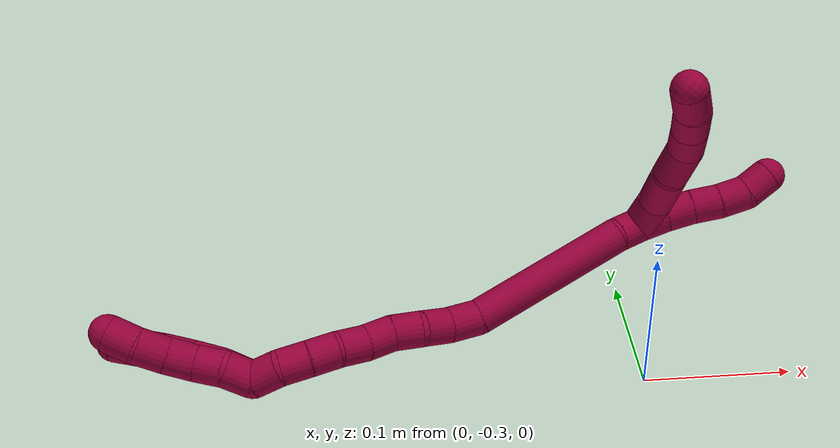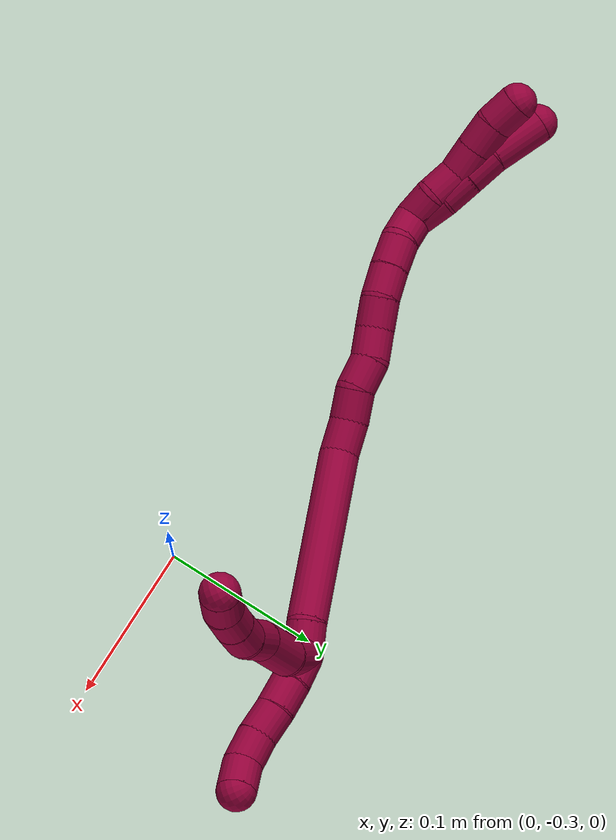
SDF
<sdf version="1.7">
 <world name="default">
  <model name="8">
   <static>0</static>
   <link name="8">
    <collision name="collision-cylinder-e_1_2_8">
     <pose>0.013202 -0.001698 0.000324 1.38202 1.44062 1.25569</pose>
     <geometry><cylinder><radius>0.0125</radius><length>0.026629</length></cylinder></geometry>
     <surface>
      <friction><ode><mu>1.16</mu><mu2>1.16</mu2><slip1>0</slip1><slip2>0</slip2></ode></friction>
      <contact><ode><kp>1e+06</kp><kd>1</kd><max_vel>0</max_vel><min_depth>0.001</min_depth></ode></contact>
     </surface>
    </collision>
    <visual name="visual-cylinder-e_1_2_8">
     <pose>0.013202 -0.001698 0.000324 1.38202 1.44062 1.25569</pose>
     <geometry><cylinder><radius>0.0125</radius><length>0.026629</length></cylinder></geometry>
     <material><ambient>0.584314 0 0.227451 1</ambient></material>
    </visual>
    <collision name="collision-cylinder-e_2_8_9">
     <pose>0.042569 -0.01054 0.001719 1.4221 1.15054 1.01874</pose>
     <geometry><cylinder><radius>0.0125</radius><length>0.035413</length></cylinder></geometry>
     <surface>
      <friction><ode><mu>1.16</mu><mu2>1.16</mu2><slip1>0</slip1><slip2>0</slip2></ode></friction>
      <contact><ode><kp>1e+06</kp><kd>1</kd><max_vel>0</max_vel><min_depth>0.001</min_depth></ode></contact>
     </surface>
    </collision>
    <visual name="visual-cylinder-e_2_8_9">
     <pose>0.042569 -0.01054 0.001719 1.4221 1.15054 1.01874</pose>
     <geometry><cylinder><radius>0.0125</radius><length>0.035413</length></cylinder></geometry>
     <material><ambient>0.584314 0 0.227451 1</ambient></material>
    </visual>
    <collision name="collision-cylinder-e_3_9_10">
     <pose>0.071574 -0.019841 0.003708 1.16831 1.39016 1.00771</pose>
     <geometry><cylinder><radius>0.0125</radius><length>0.026101</length></cylinder></geometry>
     <surface>
      <friction><ode><mu>1.16</mu><mu2>1.16</mu2><slip1>0</slip1><slip2>0</slip2></ode></friction>
      <contact><ode><kp>1e+06</kp><kd>1</kd><max_vel>0</max_vel><min_depth>0.001</min_depth></ode></contact>
     </surface>
    </collision>
    <visual name="visual-cylinder-e_3_9_10">
     <pose>0.071574 -0.019841 0.003708 1.16831 1.39016 1.00771</pose>
     <geometry><cylinder><radius>0.0125</radius><length>0.026101</length></cylinder></geometry>
     <material><ambient>0.584314 0 0.227451 1</ambient></material>
    </visual>
    <collision name="collision-cylinder-e_4_10_11">
     <pose>0.09367 -0.02674 0.006908 1.12231 1.05398 0.701264</pose>
     <geometry><cylinder><radius>0.0125</radius><length>0.021299</length></cylinder></geometry>
     <surface>
      <friction><ode><mu>1.16</mu><mu2>1.16</mu2><slip1>0</slip1><slip2>0</slip2></ode></friction>
      <contact><ode><kp>1e+06</kp><kd>1</kd><max_vel>0</max_vel><min_depth>0.001</min_depth></ode></contact>
     </surface>
    </collision>
    <visual name="visual-cylinder-e_4_10_11">
     <pose>0.09367 -0.02674 0.006908 1.12231 1.05398 0.701264</pose>
     <geometry><cylinder><radius>0.0125</radius><length>0.021299</length></cylinder></geometry>
     <material><ambient>0.584314 0 0.227451 1</ambient></material>
    </visual>
    <collision name="collision-cylinder-e_5_11_12">
     <pose>0.111339 -0.036394 0.011558 1.1215 0.995581 0.657761</pose>
     <geometry><cylinder><radius>0.0125</radius><length>0.020046</length></cylinder></geometry>
     <surface>
      <friction><ode><mu>1.16</mu><mu2>1.16</mu2><slip1>0</slip1><slip2>0</slip2></ode></friction>
      <contact><ode><kp>1e+06</kp><kd>1</kd><max_vel>0</max_vel><min_depth>0.001</min_depth></ode></contact>
     </surface>
    </collision>
    <visual name="visual-cylinder-e_5_11_12">
     <pose>0.111339 -0.036394 0.011558 1.1215 0.995581 0.657761</pose>
     <geometry><cylinder><radius>0.0125</radius><length>0.020046</length></cylinder></geometry>
     <material><ambient>0.584314 0 0.227451 1</ambient></material>
    </visual>
    <collision name="collision-cylinder-e_6_12_6">
     <pose>0.127623 -0.046058 0.018464 0.808492 0.875315 0.395138</pose>
     <geometry><cylinder><radius>0.0125</radius><length>0.020512</length></cylinder></geometry>
     <surface>
      <friction><ode><mu>1.16</mu><mu2>1.16</mu2><slip1>0</slip1><slip2>0</slip2></ode></friction>
      <contact><ode><kp>1e+06</kp><kd>1</kd><max_vel>0</max_vel><min_depth>0.001</min_depth></ode></contact>
     </surface>
    </collision>
    <visual name="visual-cylinder-e_6_12_6">
     <pose>0.127623 -0.046058 0.018464 0.808492 0.875315 0.395138</pose>
     <geometry><cylinder><radius>0.0125</radius><length>0.020512</length></cylinder></geometry>
     <material><ambient>0.584314 0 0.227451 1</ambient></material>
    </visual>
    <collision name="collision-cylinder-e_1_2_13">
     <pose>0.006124 0.006149 -0.004969 -2.2504 0.659055 -1.2428</pose>
     <geometry><cylinder><radius>0.0125</radius><length>0.02</length></cylinder></geometry>
     <surface>
      <friction><ode><mu>1.16</mu><mu2>1.16</mu2><slip1>0</slip1><slip2>0</slip2></ode></friction>
      <contact><ode><kp>1e+06</kp><kd>1</kd><max_vel>0</max_vel><min_depth>0.001</min_depth></ode></contact>
     </surface>
    </collision>
    <visual name="visual-cylinder-e_1_2_13">
     <pose>0.006124 0.006149 -0.004969 -2.2504 0.659055 -1.2428</pose>
     <geometry><cylinder><radius>0.0125</radius><length>0.02</length></cylinder></geometry>
     <material><ambient>0.584314 0 0.227451 1</ambient></material>
    </visual>
    <collision name="collision-cylinder-e_2_13_14">
     <pose>0.018225 0.018007 -0.015566 -2.34918 0.640683 -1.34101</pose>
     <geometry><cylinder><radius>0.0125</radius><length>0.02</length></cylinder></geometry>
     <surface>
      <friction><ode><mu>1.16</mu><mu2>1.16</mu2><slip1>0</slip1><slip2>0</slip2></ode></friction>
      <contact><ode><kp>1e+06</kp><kd>1</kd><max_vel>0</max_vel><min_depth>0.001</min_depth></ode></contact>
     </surface>
    </collision>
    <visual name="visual-cylinder-e_2_13_14">
     <pose>0.018225 0.018007 -0.015566 -2.34918 0.640683 -1.34101</pose>
     <geometry><cylinder><radius>0.0125</radius><length>0.02</length></cylinder></geometry>
     <material><ambient>0.584314 0 0.227451 1</ambient></material>
    </visual>
    <collision name="collision-cylinder-e_3_14_15">
     <pose>0.029838 0.0289 -0.027627 -2.46316 0.598654 -1.43718</pose>
     <geometry><cylinder><radius>0.0125</radius><length>0.02</length></cylinder></geometry>
     <surface>
      <friction><ode><mu>1.16</mu><mu2>1.16</mu2><slip1>0</slip1><slip2>0</slip2></ode></friction>
      <contact><ode><kp>1e+06</kp><kd>1</kd><max_vel>0</max_vel><min_depth>0.001</min_depth></ode></contact>
     </surface>
    </collision>
    <visual name="visual-cylinder-e_3_14_15">
     <pose>0.029838 0.0289 -0.027627 -2.46316 0.598654 -1.43718</pose>
     <geometry><cylinder><radius>0.0125</radius><length>0.02</length></cylinder></geometry>
     <material><ambient>0.584314 0 0.227451 1</ambient></material>
    </visual>
    <collision name="collision-cylinder-e_4_15_16">
     <pose>0.041466 0.040041 -0.039406 -2.30235 0.642699 -1.28212</pose>
     <geometry><cylinder><radius>0.0125</radius><length>0.02</length></cylinder></geometry>
     <surface>
      <friction><ode><mu>1.16</mu><mu2>1.16</mu2><slip1>0</slip1><slip2>0</slip2></ode></friction>
      <contact><ode><kp>1e+06</kp><kd>1</kd><max_vel>0</max_vel><min_depth>0.001</min_depth></ode></contact>
     </surface>
    </collision>
    <visual name="visual-cylinder-e_4_15_16">
     <pose>0.041466 0.040041 -0.039406 -2.30235 0.642699 -1.28212</pose>
     <geometry><cylinder><radius>0.0125</radius><length>0.02</length></cylinder></geometry>
     <material><ambient>0.584314 0 0.227451 1</ambient></material>
    </visual>
    <collision name="collision-cylinder-e_5_16_5">
     <pose>0.054534 0.052694 -0.047016 -1.89671 0.785755 -1.04744</pose>
     <geometry><cylinder><radius>0.0125</radius><length>0.02</length></cylinder></geometry>
     <surface>
      <friction><ode><mu>1.16</mu><mu2>1.16</mu2><slip1>0</slip1><slip2>0</slip2></ode></friction>
      <contact><ode><kp>1e+06</kp><kd>1</kd><max_vel>0</max_vel><min_depth>0.001</min_depth></ode></contact>
     </surface>
    </collision>
    <visual name="visual-cylinder-e_5_16_5">
     <pose>0.054534 0.052694 -0.047016 -1.89671 0.785755 -1.04744</pose>
     <geometry><cylinder><radius>0.0125</radius><length>0.02</length></cylinder></geometry>
     <material><ambient>0.584314 0 0.227451 1</ambient></material>
    </visual>
    <collision name="collision-cylinder-e_1_2_17">
     <pose>-0.003545 -0.008654 0.00377 1.15994 -0.359295 -0.236836</pose>
     <geometry><cylinder><radius>0.0125</radius><length>0.020166</length></cylinder></geometry>
     <surface>
      <friction><ode><mu>1.16</mu><mu2>1.16</mu2><slip1>0</slip1><slip2>0</slip2></ode></friction>
      <contact><ode><kp>1e+06</kp><kd>1</kd><max_vel>0</max_vel><min_depth>0.001</min_depth></ode></contact>
     </surface>
    </collision>
    <visual name="visual-cylinder-e_1_2_17">
     <pose>-0.003545 -0.008654 0.00377 1.15994 -0.359295 -0.236836</pose>
     <geometry><cylinder><radius>0.0125</radius><length>0.020166</length></cylinder></geometry>
     <material><ambient>0.584314 0 0.227451 1</ambient></material>
    </visual>
    <collision name="collision-cylinder-e_2_17_18">
     <pose>-0.039568 -0.061766 0.026559 1.16656 -0.591429 -0.396766</pose>
     <geometry><cylinder><radius>0.0125</radius><length>0.1165</length></cylinder></geometry>
     <surface>
      <friction><ode><mu>1.16</mu><mu2>1.16</mu2><slip1>0</slip1><slip2>0</slip2></ode></friction>
      <contact><ode><kp>1e+06</kp><kd>1</kd><max_vel>0</max_vel><min_depth>0.001</min_depth></ode></contact>
     </surface>
    </collision>
    <visual name="visual-cylinder-e_2_17_18">
     <pose>-0.039568 -0.061766 0.026559 1.16656 -0.591429 -0.396766</pose>
     <geometry><cylinder><radius>0.0125</radius><length>0.1165</length></cylinder></geometry>
     <material><ambient>0.584314 0 0.227451 1</ambient></material>
    </visual>
    <collision name="collision-cylinder-e_3_18_19">
     <pose>-0.076117 -0.114717 0.051577 0.955802 -0.373289 -0.195</pose>
     <geometry><cylinder><radius>0.0125</radius><length>0.022332</length></cylinder></geometry>
     <surface>
      <friction><ode><mu>1.16</mu><mu2>1.16</mu2><slip1>0</slip1><slip2>0</slip2></ode></friction>
      <contact><ode><kp>1e+06</kp><kd>1</kd><max_vel>0</max_vel><min_depth>0.001</min_depth></ode></contact>
     </surface>
    </collision>
    <visual name="visual-cylinder-e_3_18_19">
     <pose>-0.076117 -0.114717 0.051577 0.955802 -0.373289 -0.195</pose>
     <geometry><cylinder><radius>0.0125</radius><length>0.022332</length></cylinder></geometry>
     <material><ambient>0.584314 0 0.227451 1</ambient></material>
    </visual>
    <collision name="collision-cylinder-e_4_19_20">
     <pose>-0.081473 -0.131628 0.063307 0.97302 -0.125361 -0.066368</pose>
     <geometry><cylinder><radius>0.0125</radius><length>0.020531</length></cylinder></geometry>
     <surface>
      <friction><ode><mu>1.16</mu><mu2>1.16</mu2><slip1>0</slip1><slip2>0</slip2></ode></friction>
      <contact><ode><kp>1e+06</kp><kd>1</kd><max_vel>0</max_vel><min_depth>0.001</min_depth></ode></contact>
     </surface>
    </collision>
    <visual name="visual-cylinder-e_4_19_20">
     <pose>-0.081473 -0.131628 0.063307 0.97302 -0.125361 -0.066368</pose>
     <geometry><cylinder><radius>0.0125</radius><length>0.020531</length></cylinder></geometry>
     <material><ambient>0.584314 0 0.227451 1</ambient></material>
    </visual>
    <collision name="collision-cylinder-e_5_20_21">
     <pose>-0.086748 -0.146611 0.075681 0.779561 -0.404009 -0.167866</pose>
     <geometry><cylinder><radius>0.0125</radius><length>0.020311</length></cylinder></geometry>
     <surface>
      <friction><ode><mu>1.16</mu><mu2>1.16</mu2><slip1>0</slip1><slip2>0</slip2></ode></friction>
      <contact><ode><kp>1e+06</kp><kd>1</kd><max_vel>0</max_vel><min_depth>0.001</min_depth></ode></contact>
     </surface>
    </collision>
    <visual name="visual-cylinder-e_5_20_21">
     <pose>-0.086748 -0.146611 0.075681 0.779561 -0.404009 -0.167866</pose>
     <geometry><cylinder><radius>0.0125</radius><length>0.020311</length></cylinder></geometry>
     <material><ambient>0.584314 0 0.227451 1</ambient></material>
    </visual>
    <collision name="collision-cylinder-e_6_21_22">
     <pose>-0.094165 -0.161549 0.086684 1.09057 -0.347924 -0.212417</pose>
     <geometry><cylinder><radius>0.0125</radius><length>0.020086</length></cylinder></geometry>
     <surface>
      <friction><ode><mu>1.16</mu><mu2>1.16</mu2><slip1>0</slip1><slip2>0</slip2></ode></friction>
      <contact><ode><kp>1e+06</kp><kd>1</kd><max_vel>0</max_vel><min_depth>0.001</min_depth></ode></contact>
     </surface>
    </collision>
    <visual name="visual-cylinder-e_6_21_22">
     <pose>-0.094165 -0.161549 0.086684 1.09057 -0.347924 -0.212417</pose>
     <geometry><cylinder><radius>0.0125</radius><length>0.020086</length></cylinder></geometry>
     <material><ambient>0.584314 0 0.227451 1</ambient></material>
    </visual>
    <collision name="collision-cylinder-e_7_22_23">
     <pose>-0.099599 -0.178297 0.096158 1.02274 -0.202078 -0.113663</pose>
     <geometry><cylinder><radius>0.0125</radius><length>0.020033</length></cylinder></geometry>
     <surface>
      <friction><ode><mu>1.16</mu><mu2>1.16</mu2><slip1>0</slip1><slip2>0</slip2></ode></friction>
      <contact><ode><kp>1e+06</kp><kd>1</kd><max_vel>0</max_vel><min_depth>0.001</min_depth></ode></contact>
     </surface>
    </collision>
    <visual name="visual-cylinder-e_7_22_23">
     <pose>-0.099599 -0.178297 0.096158 1.02274 -0.202078 -0.113663</pose>
     <geometry><cylinder><radius>0.0125</radius><length>0.020033</length></cylinder></geometry>
     <material><ambient>0.584314 0 0.227451 1</ambient></material>
    </visual>
    <collision name="collision-cylinder-e_8_23_24">
     <pose>-0.105828 -0.194211 0.106338 0.97904 -0.434788 -0.234285</pose>
     <geometry><cylinder><radius>0.0125</radius><length>0.02003</length></cylinder></geometry>
     <surface>
      <friction><ode><mu>1.16</mu><mu2>1.16</mu2><slip1>0</slip1><slip2>0</slip2></ode></friction>
      <contact><ode><kp>1e+06</kp><kd>1</kd><max_vel>0</max_vel><min_depth>0.001</min_depth></ode></contact>
     </surface>
    </collision>
    <visual name="visual-cylinder-e_8_23_24">
     <pose>-0.105828 -0.194211 0.106338 0.97904 -0.434788 -0.234285</pose>
     <geometry><cylinder><radius>0.0125</radius><length>0.02003</length></cylinder></geometry>
     <material><ambient>0.584314 0 0.227451 1</ambient></material>
    </visual>
    <collision name="collision-cylinder-e_9_24_25">
     <pose>-0.114735 -0.208821 0.116701 0.92791 -0.487868 -0.247806</pose>
     <geometry><cylinder><radius>0.0125</radius><length>0.020004</length></cylinder></geometry>
     <surface>
      <friction><ode><mu>1.16</mu><mu2>1.16</mu2><slip1>0</slip1><slip2>0</slip2></ode></friction>
      <contact><ode><kp>1e+06</kp><kd>1</kd><max_vel>0</max_vel><min_depth>0.001</min_depth></ode></contact>
     </surface>
    </collision>
    <visual name="visual-cylinder-e_9_24_25">
     <pose>-0.114735 -0.208821 0.116701 0.92791 -0.487868 -0.247806</pose>
     <geometry><cylinder><radius>0.0125</radius><length>0.020004</length></cylinder></geometry>
     <material><ambient>0.584314 0 0.227451 1</ambient></material>
    </visual>
    <collision name="collision-cylinder-e_10_25_1">
     <pose>-0.12666 -0.221052 0.126589 0.843565 -0.80878 -0.379458</pose>
     <geometry><cylinder><radius>0.0125</radius><length>0.020007</length></cylinder></geometry>
     <surface>
      <friction><ode><mu>1.16</mu><mu2>1.16</mu2><slip1>0</slip1><slip2>0</slip2></ode></friction>
      <contact><ode><kp>1e+06</kp><kd>1</kd><max_vel>0</max_vel><min_depth>0.001</min_depth></ode></contact>
     </surface>
    </collision>
    <visual name="visual-cylinder-e_10_25_1">
     <pose>-0.12666 -0.221052 0.126589 0.843565 -0.80878 -0.379458</pose>
     <geometry><cylinder><radius>0.0125</radius><length>0.020007</length></cylinder></geometry>
     <material><ambient>0.584314 0 0.227451 1</ambient></material>
    </visual>
    <collision name="collision-cylinder-e_1_1_26">
     <pose>-0.136124 -0.228485 0.142171 0.20401 -0.195824 -0.020108</pose>
     <geometry><cylinder><radius>0.0125</radius><length>0.022885</length></cylinder></geometry>
     <surface>
      <friction><ode><mu>1.16</mu><mu2>1.16</mu2><slip1>0</slip1><slip2>0</slip2></ode></friction>
      <contact><ode><kp>1e+06</kp><kd>1</kd><max_vel>0</max_vel><min_depth>0.001</min_depth></ode></contact>
     </surface>
    </collision>
    <visual name="visual-cylinder-e_1_1_26">
     <pose>-0.136124 -0.228485 0.142171 0.20401 -0.195824 -0.020108</pose>
     <geometry><cylinder><radius>0.0125</radius><length>0.022885</length></cylinder></geometry>
     <material><ambient>0.584314 0 0.227451 1</ambient></material>
    </visual>
    <collision name="collision-cylinder-e_2_26_27">
     <pose>-0.141307 -0.23383 0.162439 0.319696 -0.293797 -0.047702</pose>
     <geometry><cylinder><radius>0.0125</radius><length>0.020419</length></cylinder></geometry>
     <surface>
      <friction><ode><mu>1.16</mu><mu2>1.16</mu2><slip1>0</slip1><slip2>0</slip2></ode></friction>
      <contact><ode><kp>1e+06</kp><kd>1</kd><max_vel>0</max_vel><min_depth>0.001</min_depth></ode></contact>
     </surface>
    </collision>
    <visual name="visual-cylinder-e_2_26_27">
     <pose>-0.141307 -0.23383 0.162439 0.319696 -0.293797 -0.047702</pose>
     <geometry><cylinder><radius>0.0125</radius><length>0.020419</length></cylinder></geometry>
     <material><ambient>0.584314 0 0.227451 1</ambient></material>
    </visual>
    <collision name="collision-cylinder-e_3_27_28">
     <pose>-0.14763 -0.24017 0.18117 0.332935 -0.324674 -0.055023</pose>
     <geometry><cylinder><radius>0.0125</radius><length>0.021109</length></cylinder></geometry>
     <surface>
      <friction><ode><mu>1.16</mu><mu2>1.16</mu2><slip1>0</slip1><slip2>0</slip2></ode></friction>
      <contact><ode><kp>1e+06</kp><kd>1</kd><max_vel>0</max_vel><min_depth>0.001</min_depth></ode></contact>
     </surface>
    </collision>
    <visual name="visual-cylinder-e_3_27_28">
     <pose>-0.14763 -0.24017 0.18117 0.332935 -0.324674 -0.055023</pose>
     <geometry><cylinder><radius>0.0125</radius><length>0.021109</length></cylinder></geometry>
     <material><ambient>0.584314 0 0.227451 1</ambient></material>
    </visual>
    <collision name="collision-cylinder-e_4_28_4">
     <pose>-0.159495 -0.247009 0.205844 0.230375 -0.497896 -0.05881</pose>
     <geometry><cylinder><radius>0.0125</radius><length>0.035587</length></cylinder></geometry>
     <surface>
      <friction><ode><mu>1.16</mu><mu2>1.16</mu2><slip1>0</slip1><slip2>0</slip2></ode></friction>
      <contact><ode><kp>1e+06</kp><kd>1</kd><max_vel>0</max_vel><min_depth>0.001</min_depth></ode></contact>
     </surface>
    </collision>
    <visual name="visual-cylinder-e_4_28_4">
     <pose>-0.159495 -0.247009 0.205844 0.230375 -0.497896 -0.05881</pose>
     <geometry><cylinder><radius>0.0125</radius><length>0.035587</length></cylinder></geometry>
     <material><ambient>0.584314 0 0.227451 1</ambient></material>
    </visual>
    <collision name="collision-cylinder-e_1_1_29">
     <pose>-0.134274 -0.230134 0.140371 0.40347 -0.037666 -0.007704</pose>
     <geometry><cylinder><radius>0.0125</radius><length>0.02</length></cylinder></geometry>
     <surface>
      <friction><ode><mu>1.16</mu><mu2>1.16</mu2><slip1>0</slip1><slip2>0</slip2></ode></friction>
      <contact><ode><kp>1e+06</kp><kd>1</kd><max_vel>0</max_vel><min_depth>0.001</min_depth></ode></contact>
     </surface>
    </collision>
    <visual name="visual-cylinder-e_1_1_29">
     <pose>-0.134274 -0.230134 0.140371 0.40347 -0.037666 -0.007704</pose>
     <geometry><cylinder><radius>0.0125</radius><length>0.02</length></cylinder></geometry>
     <material><ambient>0.584314 0 0.227451 1</ambient></material>
    </visual>
    <collision name="collision-cylinder-e_2_29_30">
     <pose>-0.138124 -0.237171 0.158406 0.338524 -0.35481 -0.061261</pose>
     <geometry><cylinder><radius>0.0125</radius><length>0.02</length></cylinder></geometry>
     <surface>
      <friction><ode><mu>1.16</mu><mu2>1.16</mu2><slip1>0</slip1><slip2>0</slip2></ode></friction>
      <contact><ode><kp>1e+06</kp><kd>1</kd><max_vel>0</max_vel><min_depth>0.001</min_depth></ode></contact>
     </surface>
    </collision>
    <visual name="visual-cylinder-e_2_29_30">
     <pose>-0.138124 -0.237171 0.158406 0.338524 -0.35481 -0.061261</pose>
     <geometry><cylinder><radius>0.0125</radius><length>0.02</length></cylinder></geometry>
     <material><ambient>0.584314 0 0.227451 1</ambient></material>
    </visual>
    <collision name="collision-cylinder-e_3_30_31">
     <pose>-0.142246 -0.24532 0.175867 0.528829 -0.064754 -0.017538</pose>
     <geometry><cylinder><radius>0.0125</radius><length>0.02</length></cylinder></geometry>
     <surface>
      <friction><ode><mu>1.16</mu><mu2>1.16</mu2><slip1>0</slip1><slip2>0</slip2></ode></friction>
      <contact><ode><kp>1e+06</kp><kd>1</kd><max_vel>0</max_vel><min_depth>0.001</min_depth></ode></contact>
     </surface>
    </collision>
    <visual name="visual-cylinder-e_3_30_31">
     <pose>-0.142246 -0.24532 0.175867 0.528829 -0.064754 -0.017538</pose>
     <geometry><cylinder><radius>0.0125</radius><length>0.02</length></cylinder></geometry>
     <material><ambient>0.584314 0 0.227451 1</ambient></material>
    </visual>
    <collision name="collision-cylinder-e_4_31_32">
     <pose>-0.143074 -0.255117 0.193274 0.496484 -0.018115 -0.004592</pose>
     <geometry><cylinder><radius>0.0125</radius><length>0.02</length></cylinder></geometry>
     <surface>
      <friction><ode><mu>1.16</mu><mu2>1.16</mu2><slip1>0</slip1><slip2>0</slip2></ode></friction>
      <contact><ode><kp>1e+06</kp><kd>1</kd><max_vel>0</max_vel><min_depth>0.001</min_depth></ode></contact>
     </surface>
    </collision>
    <visual name="visual-cylinder-e_4_31_32">
     <pose>-0.143074 -0.255117 0.193274 0.496484 -0.018115 -0.004592</pose>
     <geometry><cylinder><radius>0.0125</radius><length>0.02</length></cylinder></geometry>
     <material><ambient>0.584314 0 0.227451 1</ambient></material>
    </visual>
    <collision name="collision-cylinder-e_5_32_3">
     <pose>-0.144009 -0.262777 0.211607 0.294749 -0.075444 -0.011205</pose>
     <geometry><cylinder><radius>0.0125</radius><length>0.02</length></cylinder></geometry>
     <surface>
      <friction><ode><mu>1.16</mu><mu2>1.16</mu2><slip1>0</slip1><slip2>0</slip2></ode></friction>
      <contact><ode><kp>1e+06</kp><kd>1</kd><max_vel>0</max_vel><min_depth>0.001</min_depth></ode></contact>
     </surface>
    </collision>
    <visual name="visual-cylinder-e_5_32_3">
     <pose>-0.144009 -0.262777 0.211607 0.294749 -0.075444 -0.011205</pose>
     <geometry><cylinder><radius>0.0125</radius><length>0.02</length></cylinder></geometry>
     <material><ambient>0.584314 0 0.227451 1</ambient></material>
    </visual>
    <collision name="collision-sphere-3">
     <pose>-0.144762 -0.265674 0.221149 0 -0 0</pose>
     <geometry><sphere><radius>0.0125</radius></sphere></geometry>
     <surface>
      <friction><ode><mu>1.16</mu><mu2>1.16</mu2><slip1>0</slip1><slip2>0</slip2></ode></friction>
      <contact><ode><kp>1e+06</kp><kd>1</kd><max_vel>0</max_vel><min_depth>0.001</min_depth></ode></contact>
     </surface>
    </collision>
    <visual name="visual-sphere-3">
     <pose>-0.144762 -0.265674 0.221149 0 -0 0</pose>
     <geometry><sphere><radius>0.0125</radius></sphere></geometry>
     <material><ambient>0.584314 0 0.227451 1</ambient></material>
    </visual>
    <collision name="collision-sphere-32">
     <pose>-0.143255 -0.25988 0.202065 0 -0 0</pose>
     <geometry><sphere><radius>0.0125</radius></sphere></geometry>
     <surface>
      <friction><ode><mu>1.16</mu><mu2>1.16</mu2><slip1>0</slip1><slip2>0</slip2></ode></friction>
      <contact><ode><kp>1e+06</kp><kd>1</kd><max_vel>0</max_vel><min_depth>0.001</min_depth></ode></contact>
     </surface>
    </collision>
    <visual name="visual-sphere-32">
     <pose>-0.143255 -0.25988 0.202065 0 -0 0</pose>
     <geometry><sphere><radius>0.0125</radius></sphere></geometry>
     <material><ambient>0.584314 0 0.227451 1</ambient></material>
    </visual>
    <collision name="collision-sphere-31">
     <pose>-0.142893 -0.250355 0.184483 0 -0 0</pose>
     <geometry><sphere><radius>0.0125</radius></sphere></geometry>
     <surface>
      <friction><ode><mu>1.16</mu><mu2>1.16</mu2><slip1>0</slip1><slip2>0</slip2></ode></friction>
      <contact><ode><kp>1e+06</kp><kd>1</kd><max_vel>0</max_vel><min_depth>0.001</min_depth></ode></contact>
     </surface>
    </collision>
    <visual name="visual-sphere-31">
     <pose>-0.142893 -0.250355 0.184483 0 -0 0</pose>
     <geometry><sphere><radius>0.0125</radius></sphere></geometry>
     <material><ambient>0.584314 0 0.227451 1</ambient></material>
    </visual>
    <collision name="collision-sphere-30">
     <pose>-0.141599 -0.240286 0.167251 0 -0 0</pose>
     <geometry><sphere><radius>0.0125</radius></sphere></geometry>
     <surface>
      <friction><ode><mu>1.16</mu><mu2>1.16</mu2><slip1>0</slip1><slip2>0</slip2></ode></friction>
      <contact><ode><kp>1e+06</kp><kd>1</kd><max_vel>0</max_vel><min_depth>0.001</min_depth></ode></contact>
     </surface>
    </collision>
    <visual name="visual-sphere-30">
     <pose>-0.141599 -0.240286 0.167251 0 -0 0</pose>
     <geometry><sphere><radius>0.0125</radius></sphere></geometry>
     <material><ambient>0.584314 0 0.227451 1</ambient></material>
    </visual>
    <collision name="collision-sphere-29">
     <pose>-0.13465 -0.234057 0.149561 0 -0 0</pose>
     <geometry><sphere><radius>0.0125</radius></sphere></geometry>
     <surface>
      <friction><ode><mu>1.16</mu><mu2>1.16</mu2><slip1>0</slip1><slip2>0</slip2></ode></friction>
      <contact><ode><kp>1e+06</kp><kd>1</kd><max_vel>0</max_vel><min_depth>0.001</min_depth></ode></contact>
     </surface>
    </collision>
    <visual name="visual-sphere-29">
     <pose>-0.13465 -0.234057 0.149561 0 -0 0</pose>
     <geometry><sphere><radius>0.0125</radius></sphere></geometry>
     <material><ambient>0.584314 0 0.227451 1</ambient></material>
    </visual>
    <collision name="collision-sphere-4">
     <pose>-0.167992 -0.250579 0.221064 0 -0 0</pose>
     <geometry><sphere><radius>0.0125</radius></sphere></geometry>
     <surface>
      <friction><ode><mu>1.16</mu><mu2>1.16</mu2><slip1>0</slip1><slip2>0</slip2></ode></friction>
      <contact><ode><kp>1e+06</kp><kd>1</kd><max_vel>0</max_vel><min_depth>0.001</min_depth></ode></contact>
     </surface>
    </collision>
    <visual name="visual-sphere-4">
     <pose>-0.167992 -0.250579 0.221064 0 -0 0</pose>
     <geometry><sphere><radius>0.0125</radius></sphere></geometry>
     <material><ambient>0.584314 0 0.227451 1</ambient></material>
    </visual>
    <collision name="collision-sphere-28">
     <pose>-0.150997 -0.243439 0.190624 0 -0 0</pose>
     <geometry><sphere><radius>0.0125</radius></sphere></geometry>
     <surface>
      <friction><ode><mu>1.16</mu><mu2>1.16</mu2><slip1>0</slip1><slip2>0</slip2></ode></friction>
      <contact><ode><kp>1e+06</kp><kd>1</kd><max_vel>0</max_vel><min_depth>0.001</min_depth></ode></contact>
     </surface>
    </collision>
    <visual name="visual-sphere-28">
     <pose>-0.150997 -0.243439 0.190624 0 -0 0</pose>
     <geometry><sphere><radius>0.0125</radius></sphere></geometry>
     <material><ambient>0.584314 0 0.227451 1</ambient></material>
    </visual>
    <collision name="collision-sphere-27">
     <pose>-0.144263 -0.236901 0.171716 0 -0 0</pose>
     <geometry><sphere><radius>0.0125</radius></sphere></geometry>
     <surface>
      <friction><ode><mu>1.16</mu><mu2>1.16</mu2><slip1>0</slip1><slip2>0</slip2></ode></friction>
      <contact><ode><kp>1e+06</kp><kd>1</kd><max_vel>0</max_vel><min_depth>0.001</min_depth></ode></contact>
     </surface>
    </collision>
    <visual name="visual-sphere-27">
     <pose>-0.144263 -0.236901 0.171716 0 -0 0</pose>
     <geometry><sphere><radius>0.0125</radius></sphere></geometry>
     <material><ambient>0.584314 0 0.227451 1</ambient></material>
    </visual>
    <collision name="collision-sphere-26">
     <pose>-0.13835 -0.230758 0.153162 0 -0 0</pose>
     <geometry><sphere><radius>0.0125</radius></sphere></geometry>
     <surface>
      <friction><ode><mu>1.16</mu><mu2>1.16</mu2><slip1>0</slip1><slip2>0</slip2></ode></friction>
      <contact><ode><kp>1e+06</kp><kd>1</kd><max_vel>0</max_vel><min_depth>0.001</min_depth></ode></contact>
     </surface>
    </collision>
    <visual name="visual-sphere-26">
     <pose>-0.13835 -0.230758 0.153162 0 -0 0</pose>
     <geometry><sphere><radius>0.0125</radius></sphere></geometry>
     <material><ambient>0.584314 0 0.227451 1</ambient></material>
    </visual>
    <collision name="collision-sphere-1">
     <pose>-0.133897 -0.226211 0.13118 0 -0 0</pose>
     <geometry><sphere><radius>0.0125</radius></sphere></geometry>
     <surface>
      <friction><ode><mu>1.16</mu><mu2>1.16</mu2><slip1>0</slip1><slip2>0</slip2></ode></friction>
      <contact><ode><kp>1e+06</kp><kd>1</kd><max_vel>0</max_vel><min_depth>0.001</min_depth></ode></contact>
     </surface>
    </collision>
    <visual name="visual-sphere-1">
     <pose>-0.133897 -0.226211 0.13118 0 -0 0</pose>
     <geometry><sphere><radius>0.0125</radius></sphere></geometry>
     <material><ambient>0.584314 0 0.227451 1</ambient></material>
    </visual>
    <collision name="collision-sphere-25">
     <pose>-0.119423 -0.215893 0.121998 0 -0 0</pose>
     <geometry><sphere><radius>0.0125</radius></sphere></geometry>
     <surface>
      <friction><ode><mu>1.16</mu><mu2>1.16</mu2><slip1>0</slip1><slip2>0</slip2></ode></friction>
      <contact><ode><kp>1e+06</kp><kd>1</kd><max_vel>0</max_vel><min_depth>0.001</min_depth></ode></contact>
     </surface>
    </collision>
    <visual name="visual-sphere-25">
     <pose>-0.119423 -0.215893 0.121998 0 -0 0</pose>
     <geometry><sphere><radius>0.0125</radius></sphere></geometry>
     <material><ambient>0.584314 0 0.227451 1</ambient></material>
    </visual>
    <collision name="collision-sphere-24">
     <pose>-0.110047 -0.20175 0.111405 0 -0 0</pose>
     <geometry><sphere><radius>0.0125</radius></sphere></geometry>
     <surface>
      <friction><ode><mu>1.16</mu><mu2>1.16</mu2><slip1>0</slip1><slip2>0</slip2></ode></friction>
      <contact><ode><kp>1e+06</kp><kd>1</kd><max_vel>0</max_vel><min_depth>0.001</min_depth></ode></contact>
     </surface>
    </collision>
    <visual name="visual-sphere-24">
     <pose>-0.110047 -0.20175 0.111405 0 -0 0</pose>
     <geometry><sphere><radius>0.0125</radius></sphere></geometry>
     <material><ambient>0.584314 0 0.227451 1</ambient></material>
    </visual>
    <collision name="collision-sphere-23">
     <pose>-0.10161 -0.186673 0.101271 0 -0 0</pose>
     <geometry><sphere><radius>0.0125</radius></sphere></geometry>
     <surface>
      <friction><ode><mu>1.16</mu><mu2>1.16</mu2><slip1>0</slip1><slip2>0</slip2></ode></friction>
      <contact><ode><kp>1e+06</kp><kd>1</kd><max_vel>0</max_vel><min_depth>0.001</min_depth></ode></contact>
     </surface>
    </collision>
    <visual name="visual-sphere-23">
     <pose>-0.10161 -0.186673 0.101271 0 -0 0</pose>
     <geometry><sphere><radius>0.0125</radius></sphere></geometry>
     <material><ambient>0.584314 0 0.227451 1</ambient></material>
    </visual>
    <collision name="collision-sphere-22">
     <pose>-0.097589 -0.169922 0.091046 0 -0 0</pose>
     <geometry><sphere><radius>0.0125</radius></sphere></geometry>
     <surface>
      <friction><ode><mu>1.16</mu><mu2>1.16</mu2><slip1>0</slip1><slip2>0</slip2></ode></friction>
      <contact><ode><kp>1e+06</kp><kd>1</kd><max_vel>0</max_vel><min_depth>0.001</min_depth></ode></contact>
     </surface>
    </collision>
    <visual name="visual-sphere-22">
     <pose>-0.097589 -0.169922 0.091046 0 -0 0</pose>
     <geometry><sphere><radius>0.0125</radius></sphere></geometry>
     <material><ambient>0.584314 0 0.227451 1</ambient></material>
    </visual>
    <collision name="collision-sphere-21">
     <pose>-0.090741 -0.153175 0.082323 0 -0 0</pose>
     <geometry><sphere><radius>0.0125</radius></sphere></geometry>
     <surface>
      <friction><ode><mu>1.16</mu><mu2>1.16</mu2><slip1>0</slip1><slip2>0</slip2></ode></friction>
      <contact><ode><kp>1e+06</kp><kd>1</kd><max_vel>0</max_vel><min_depth>0.001</min_depth></ode></contact>
     </surface>
    </collision>
    <visual name="visual-sphere-21">
     <pose>-0.090741 -0.153175 0.082323 0 -0 0</pose>
     <geometry><sphere><radius>0.0125</radius></sphere></geometry>
     <material><ambient>0.584314 0 0.227451 1</ambient></material>
    </visual>
    <collision name="collision-sphere-12">
     <pose>0.119749 -0.041305 0.013926 0 -0 0</pose>
     <geometry><sphere><radius>0.0125</radius></sphere></geometry>
     <surface>
      <friction><ode><mu>1.16</mu><mu2>1.16</mu2><slip1>0</slip1><slip2>0</slip2></ode></friction>
      <contact><ode><kp>1e+06</kp><kd>1</kd><max_vel>0</max_vel><min_depth>0.001</min_depth></ode></contact>
     </surface>
    </collision>
    <visual name="visual-sphere-12">
     <pose>0.119749 -0.041305 0.013926 0 -0 0</pose>
     <geometry><sphere><radius>0.0125</radius></sphere></geometry>
     <material><ambient>0.584314 0 0.227451 1</ambient></material>
    </visual>
    <collision name="collision-sphere-11">
     <pose>0.102929 -0.031482 0.009189 0 -0 0</pose>
     <geometry><sphere><radius>0.0125</radius></sphere></geometry>
     <surface>
      <friction><ode><mu>1.16</mu><mu2>1.16</mu2><slip1>0</slip1><slip2>0</slip2></ode></friction>
      <contact><ode><kp>1e+06</kp><kd>1</kd><max_vel>0</max_vel><min_depth>0.001</min_depth></ode></contact>
     </surface>
    </collision>
    <visual name="visual-sphere-11">
     <pose>0.102929 -0.031482 0.009189 0 -0 0</pose>
     <geometry><sphere><radius>0.0125</radius></sphere></geometry>
     <material><ambient>0.584314 0 0.227451 1</ambient></material>
    </visual>
    <collision name="collision-sphere-10">
     <pose>0.084412 -0.021999 0.004626 0 -0 0</pose>
     <geometry><sphere><radius>0.0125</radius></sphere></geometry>
     <surface>
      <friction><ode><mu>1.16</mu><mu2>1.16</mu2><slip1>0</slip1><slip2>0</slip2></ode></friction>
      <contact><ode><kp>1e+06</kp><kd>1</kd><max_vel>0</max_vel><min_depth>0.001</min_depth></ode></contact>
     </surface>
    </collision>
    <visual name="visual-sphere-10">
     <pose>0.084412 -0.021999 0.004626 0 -0 0</pose>
     <geometry><sphere><radius>0.0125</radius></sphere></geometry>
     <material><ambient>0.584314 0 0.227451 1</ambient></material>
    </visual>
    <collision name="collision-sphere-9">
     <pose>0.058735 -0.017684 0.002789 0 -0 0</pose>
     <geometry><sphere><radius>0.0125</radius></sphere></geometry>
     <surface>
      <friction><ode><mu>1.16</mu><mu2>1.16</mu2><slip1>0</slip1><slip2>0</slip2></ode></friction>
      <contact><ode><kp>1e+06</kp><kd>1</kd><max_vel>0</max_vel><min_depth>0.001</min_depth></ode></contact>
     </surface>
    </collision>
    <visual name="visual-sphere-9">
     <pose>0.058735 -0.017684 0.002789 0 -0 0</pose>
     <geometry><sphere><radius>0.0125</radius></sphere></geometry>
     <material><ambient>0.584314 0 0.227451 1</ambient></material>
    </visual>
    <collision name="collision-sphere-2">
     <geometry><sphere><radius>0.0125</radius></sphere></geometry>
     <surface>
      <friction><ode><mu>1.16</mu><mu2>1.16</mu2><slip1>0</slip1><slip2>0</slip2></ode></friction>
      <contact><ode><kp>1e+06</kp><kd>1</kd><max_vel>0</max_vel><min_depth>0.001</min_depth></ode></contact>
     </surface>
    </collision>
    <visual name="visual-sphere-2">
     <geometry><sphere><radius>0.0125</radius></sphere></geometry>
     <material><ambient>0.584314 0 0.227451 1</ambient></material>
    </visual>
    <collision name="collision-sphere-19">
     <pose>-0.080189 -0.123209 0.057575 0 -0 0</pose>
     <geometry><sphere><radius>0.0125</radius></sphere></geometry>
     <surface>
      <friction><ode><mu>1.16</mu><mu2>1.16</mu2><slip1>0</slip1><slip2>0</slip2></ode></friction>
      <contact><ode><kp>1e+06</kp><kd>1</kd><max_vel>0</max_vel><min_depth>0.001</min_depth></ode></contact>
     </surface>
    </collision>
    <visual name="visual-sphere-19">
     <pose>-0.080189 -0.123209 0.057575 0 -0 0</pose>
     <geometry><sphere><radius>0.0125</radius></sphere></geometry>
     <material><ambient>0.584314 0 0.227451 1</ambient></material>
    </visual>
    <collision name="collision-sphere-8">
     <pose>0.026403 -0.003395 0.000649 0 -0 0</pose>
     <geometry><sphere><radius>0.0125</radius></sphere></geometry>
     <surface>
      <friction><ode><mu>1.16</mu><mu2>1.16</mu2><slip1>0</slip1><slip2>0</slip2></ode></friction>
      <contact><ode><kp>1e+06</kp><kd>1</kd><max_vel>0</max_vel><min_depth>0.001</min_depth></ode></contact>
     </surface>
    </collision>
    <visual name="visual-sphere-8">
     <pose>0.026403 -0.003395 0.000649 0 -0 0</pose>
     <geometry><sphere><radius>0.0125</radius></sphere></geometry>
     <material><ambient>0.584314 0 0.227451 1</ambient></material>
    </visual>
    <collision name="collision-sphere-6">
     <pose>0.135497 -0.050811 0.023002 0 -0 0</pose>
     <geometry><sphere><radius>0.0125</radius></sphere></geometry>
     <surface>
      <friction><ode><mu>1.16</mu><mu2>1.16</mu2><slip1>0</slip1><slip2>0</slip2></ode></friction>
      <contact><ode><kp>1e+06</kp><kd>1</kd><max_vel>0</max_vel><min_depth>0.001</min_depth></ode></contact>
     </surface>
    </collision>
    <visual name="visual-sphere-6">
     <pose>0.135497 -0.050811 0.023002 0 -0 0</pose>
     <geometry><sphere><radius>0.0125</radius></sphere></geometry>
     <material><ambient>0.584314 0 0.227451 1</ambient></material>
    </visual>
    <collision name="collision-sphere-13">
     <pose>0.012247 0.012298 -0.009937 0 -0 0</pose>
     <geometry><sphere><radius>0.0125</radius></sphere></geometry>
     <surface>
      <friction><ode><mu>1.16</mu><mu2>1.16</mu2><slip1>0</slip1><slip2>0</slip2></ode></friction>
      <contact><ode><kp>1e+06</kp><kd>1</kd><max_vel>0</max_vel><min_depth>0.001</min_depth></ode></contact>
     </surface>
    </collision>
    <visual name="visual-sphere-13">
     <pose>0.012247 0.012298 -0.009937 0 -0 0</pose>
     <geometry><sphere><radius>0.0125</radius></sphere></geometry>
     <material><ambient>0.584314 0 0.227451 1</ambient></material>
    </visual>
    <collision name="collision-sphere-14">
     <pose>0.024202 0.023715 -0.021195 0 -0 0</pose>
     <geometry><sphere><radius>0.0125</radius></sphere></geometry>
     <surface>
      <friction><ode><mu>1.16</mu><mu2>1.16</mu2><slip1>0</slip1><slip2>0</slip2></ode></friction>
      <contact><ode><kp>1e+06</kp><kd>1</kd><max_vel>0</max_vel><min_depth>0.001</min_depth></ode></contact>
     </surface>
    </collision>
    <visual name="visual-sphere-14">
     <pose>0.024202 0.023715 -0.021195 0 -0 0</pose>
     <geometry><sphere><radius>0.0125</radius></sphere></geometry>
     <material><ambient>0.584314 0 0.227451 1</ambient></material>
    </visual>
    <collision name="collision-sphere-15">
     <pose>0.035473 0.034084 -0.034058 0 -0 0</pose>
     <geometry><sphere><radius>0.0125</radius></sphere></geometry>
     <surface>
      <friction><ode><mu>1.16</mu><mu2>1.16</mu2><slip1>0</slip1><slip2>0</slip2></ode></friction>
      <contact><ode><kp>1e+06</kp><kd>1</kd><max_vel>0</max_vel><min_depth>0.001</min_depth></ode></contact>
     </surface>
    </collision>
    <visual name="visual-sphere-15">
     <pose>0.035473 0.034084 -0.034058 0 -0 0</pose>
     <geometry><sphere><radius>0.0125</radius></sphere></geometry>
     <material><ambient>0.584314 0 0.227451 1</ambient></material>
    </visual>
    <collision name="collision-sphere-16">
     <pose>0.04746 0.045997 -0.044753 0 -0 0</pose>
     <geometry><sphere><radius>0.0125</radius></sphere></geometry>
     <surface>
      <friction><ode><mu>1.16</mu><mu2>1.16</mu2><slip1>0</slip1><slip2>0</slip2></ode></friction>
      <contact><ode><kp>1e+06</kp><kd>1</kd><max_vel>0</max_vel><min_depth>0.001</min_depth></ode></contact>
     </surface>
    </collision>
    <visual name="visual-sphere-16">
     <pose>0.04746 0.045997 -0.044753 0 -0 0</pose>
     <geometry><sphere><radius>0.0125</radius></sphere></geometry>
     <material><ambient>0.584314 0 0.227451 1</ambient></material>
    </visual>
    <collision name="collision-sphere-5">
     <pose>0.061607 0.05939 -0.04928 0 -0 0</pose>
     <geometry><sphere><radius>0.0125</radius></sphere></geometry>
     <surface>
      <friction><ode><mu>1.16</mu><mu2>1.16</mu2><slip1>0</slip1><slip2>0</slip2></ode></friction>
      <contact><ode><kp>1e+06</kp><kd>1</kd><max_vel>0</max_vel><min_depth>0.001</min_depth></ode></contact>
     </surface>
    </collision>
    <visual name="visual-sphere-5">
     <pose>0.061607 0.05939 -0.04928 0 -0 0</pose>
     <geometry><sphere><radius>0.0125</radius></sphere></geometry>
     <material><ambient>0.584314 0 0.227451 1</ambient></material>
    </visual>
    <collision name="collision-sphere-17">
     <pose>-0.007091 -0.017307 0.00754 0 -0 0</pose>
     <geometry><sphere><radius>0.0125</radius></sphere></geometry>
     <surface>
      <friction><ode><mu>1.16</mu><mu2>1.16</mu2><slip1>0</slip1><slip2>0</slip2></ode></friction>
      <contact><ode><kp>1e+06</kp><kd>1</kd><max_vel>0</max_vel><min_depth>0.001</min_depth></ode></contact>
     </surface>
    </collision>
    <visual name="visual-sphere-17">
     <pose>-0.007091 -0.017307 0.00754 0 -0 0</pose>
     <geometry><sphere><radius>0.0125</radius></sphere></geometry>
     <material><ambient>0.584314 0 0.227451 1</ambient></material>
    </visual>
    <collision name="collision-sphere-18">
     <pose>-0.072045 -0.106225 0.045578 0 -0 0</pose>
     <geometry><sphere><radius>0.0125</radius></sphere></geometry>
     <surface>
      <friction><ode><mu>1.16</mu><mu2>1.16</mu2><slip1>0</slip1><slip2>0</slip2></ode></friction>
      <contact><ode><kp>1e+06</kp><kd>1</kd><max_vel>0</max_vel><min_depth>0.001</min_depth></ode></contact>
     </surface>
    </collision>
    <visual name="visual-sphere-18">
     <pose>-0.072045 -0.106225 0.045578 0 -0 0</pose>
     <geometry><sphere><radius>0.0125</radius></sphere></geometry>
     <material><ambient>0.584314 0 0.227451 1</ambient></material>
    </visual>
    <collision name="collision-sphere-20">
     <pose>-0.082756 -0.140047 0.06904 0 -0 0</pose>
     <geometry><sphere><radius>0.0125</radius></sphere></geometry>
     <surface>
      <friction><ode><mu>1.16</mu><mu2>1.16</mu2><slip1>0</slip1><slip2>0</slip2></ode></friction>
      <contact><ode><kp>1e+06</kp><kd>1</kd><max_vel>0</max_vel><min_depth>0.001</min_depth></ode></contact>
     </surface>
    </collision>
    <visual name="visual-sphere-20">
     <pose>-0.082756 -0.140047 0.06904 0 -0 0</pose>
     <geometry><sphere><radius>0.0125</radius></sphere></geometry>
     <material><ambient>0.584314 0 0.227451 1</ambient></material>
    </visual>
    <inertial>
     <pose>-0.047871 -0.111543 0.068488 0 -0 0</pose>
     <mass>0.75</mass>
     <inertia><ixx>9.1e-05</ixx><ixy>0</ixy><ixz>0</ixz><iyy>4.6e-05</iyy><iyz>0</iyz><izz>0.00021</izz></inertia>
    </inertial>
   </link>
   <pose>0.01437 -0.194421 0.053729 -0.241927 -1.12452 -0.375656</pose>
  </model>
 </world>
</sdf>
